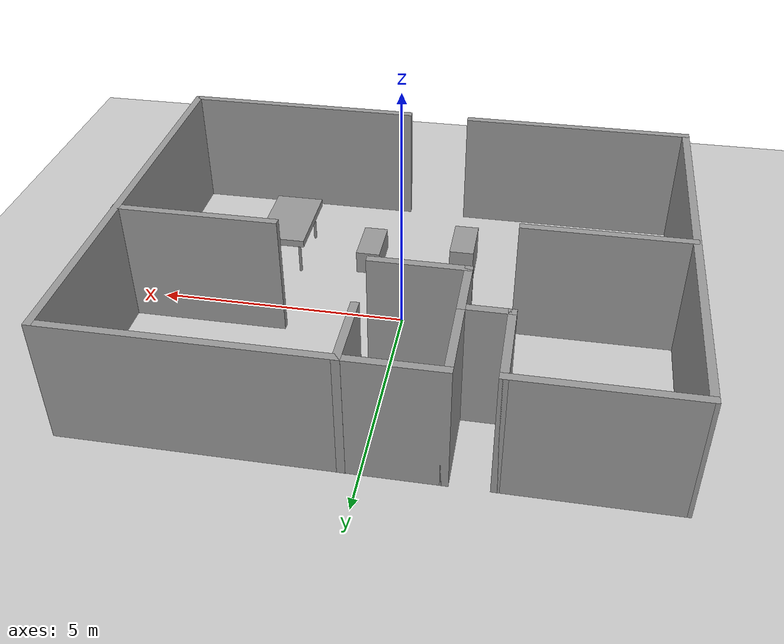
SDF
<sdf version="1.6">
 <world name="default">
  <light name="sun" type="directional">
   <pose>0 0 10 0 -0 0</pose>
   <diffuse>0.8 0.8 0.8 1</diffuse>
   <specular>0.2 0.2 0.2 1</specular>
   <attenuation>
    <range>1000</range>
    <constant>0.9</constant>
    <linear>0.01</linear>
    <quadratic>0.001</quadratic>
   </attenuation>
   <direction>-0.5 0.1 -0.9</direction>
  </light>
  <model name="ground_plane">
   <static>1</static>
   <link name="link">
    <collision name="collision">
     <geometry><plane><normal>0 0 1</normal><size>100 100</size></plane></geometry>
     <surface>
      <contact><collide_bitmask>65535</collide_bitmask></contact>
      <friction><ode><mu>100</mu><mu2>50</mu2></ode></friction>
     </surface>
    </collision>
    <visual name="visual">
     <cast_shadows>0</cast_shadows>
     <geometry><plane><normal>0 0 1</normal><size>100 100</size></plane></geometry>
     <material>
      <script><uri>file://media/materials/scripts/gazebo.material</uri><name>Gazebo/Grey</name></script>
     </material>
    </visual>
   </link>
  </model>
  <gravity>0 0 -9.8</gravity>
  <magnetic_field>6e-06 2.3e-05 -4.2e-05</magnetic_field>
  <atmosphere type="adiabatic"/>
  <physics name="default_physics" default="0" type="ode">
   <max_step_size>0.001</max_step_size>
   <real_time_factor>1</real_time_factor>
   <real_time_update_rate>1000</real_time_update_rate>
  </physics>
  <scene><ambient>0.4 0.4 0.4 1</ambient><background>0.7 0.7 0.7 1</background><shadows>1</shadows></scene>
  <spherical_coordinates>
   <surface_model>EARTH_WGS84</surface_model>
   <latitude_deg>0</latitude_deg>
   <longitude_deg>0</longitude_deg>
   <elevation>0</elevation>
   <heading_deg>0</heading_deg>
  </spherical_coordinates>
  <model name="living_lab">
   <link name="Wall_0">
    <collision name="Wall_0_Collision">
     <geometry><box><size>3.25 0.15 2.5</size></box></geometry>
     <pose>0 0 1.25 0 -0 0</pose>
    </collision>
    <visual name="Wall_0_Visual">
     <pose>0 0 1.25 0 -0 0</pose>
     <geometry><box><size>3.25 0.15 2.5</size></box></geometry>
     <material>
      <script><uri>file://media/materials/scripts/gazebo.material</uri><name>Gazebo/Grey</name></script>
      <ambient>1 1 1 1</ambient>
     </material>
     <meta><layer>0</layer></meta>
    </visual>
    <pose>-3.83237 4.17394 0 0 -0 0</pose>
   </link>
   <link name="Wall_1">
    <collision name="Wall_1_Collision">
     <geometry><box><size>1.75 0.15 2.5</size></box></geometry>
     <pose>0 0 1.25 0 -0 0</pose>
    </collision>
    <visual name="Wall_1_Visual">
     <pose>0 0 1.25 0 -0 0</pose>
     <geometry><box><size>1.75 0.15 2.5</size></box></geometry>
     <material>
      <script><uri>file://media/materials/scripts/gazebo.material</uri><name>Gazebo/Grey</name></script>
      <ambient>1 1 1 1</ambient>
     </material>
     <meta><layer>0</layer></meta>
    </visual>
    <pose>-2.28237 3.37394 0 0 -0 -1.5708</pose>
   </link>
   <link name="Wall_10">
    <collision name="Wall_10_Collision">
     <geometry><box><size>7 0.15 2.5</size></box></geometry>
     <pose>0 0 1.25 0 -0 0</pose>
    </collision>
    <visual name="Wall_10_Visual">
     <pose>0 0 1.25 0 -0 0</pose>
     <geometry><box><size>7 0.15 2.5</size></box></geometry>
     <material>
      <script><uri>file://media/materials/scripts/gazebo.material</uri><name>Gazebo/Grey</name></script>
      <ambient>1 1 1 1</ambient>
     </material>
     <meta><layer>0</layer></meta>
    </visual>
    <pose>1.99263 4.17394 0 0 -0 0</pose>
   </link>
   <link name="Wall_12">
    <collision name="Wall_12_Collision">
     <geometry><box><size>8.5 0.15 2.5</size></box></geometry>
     <pose>0 0 1.25 0 -0 0</pose>
    </collision>
    <visual name="Wall_12_Visual">
     <pose>0 0 1.25 0 -0 0</pose>
     <geometry><box><size>8.5 0.15 2.5</size></box></geometry>
     <material>
      <script><uri>file://media/materials/scripts/gazebo.material</uri><name>Gazebo/Grey</name></script>
      <ambient>1 1 1 1</ambient>
     </material>
     <meta><layer>0</layer></meta>
    </visual>
    <pose>5.41763 -0.001063 0 0 -0 -1.5708</pose>
   </link>
   <link name="Wall_13">
    <collision name="Wall_13_Collision">
     <geometry><box><size>5 0.15 2.5</size></box></geometry>
     <pose>0 0 1.25 0 -0 0</pose>
    </collision>
    <visual name="Wall_13_Visual">
     <pose>0 0 1.25 0 -0 0</pose>
     <geometry><box><size>5 0.15 2.5</size></box></geometry>
     <material>
      <script><uri>file://media/materials/scripts/gazebo.material</uri><name>Gazebo/Grey</name></script>
      <ambient>1 1 1 1</ambient>
     </material>
     <meta><layer>0</layer></meta>
    </visual>
    <pose>2.99263 -4.17606 0 0 -0 3.14159</pose>
   </link>
   <link name="Wall_15">
    <collision name="Wall_15_Collision">
     <geometry><box><size>4.75 0.15 2.5</size></box></geometry>
     <pose>0 0 1.25 0 -0 0</pose>
    </collision>
    <visual name="Wall_15_Visual">
     <pose>0 0 1.25 0 -0 0</pose>
     <geometry><box><size>4.75 0.15 2.5</size></box></geometry>
     <material>
      <script><uri>file://media/materials/scripts/gazebo.material</uri><name>Gazebo/Grey</name></script>
      <ambient>1 1 1 1</ambient>
     </material>
     <meta><layer>0</layer></meta>
    </visual>
    <pose>-3.12746 -4.16076 0 0 -0 3.14159</pose>
   </link>
   <link name="Wall_17">
    <collision name="Wall_17_Collision">
     <geometry><box><size>8.48482 0.15 2.5</size></box></geometry>
     <pose>0 0 1.25 0 -0 0</pose>
    </collision>
    <visual name="Wall_17_Visual">
     <pose>0 0 1.25 0 -0 0</pose>
     <geometry><box><size>8.48482 0.15 2.5</size></box></geometry>
     <material>
      <script><uri>file://media/materials/scripts/gazebo.material</uri><name>Gazebo/Grey</name></script>
      <ambient>1 1 1 1</ambient>
     </material>
     <meta><layer>0</layer></meta>
    </visual>
    <pose>-5.40491 0.006586 0 0 -0 1.56539</pose>
   </link>
   <link name="Wall_19">
    <collision name="Wall_19_Collision">
     <geometry><box><size>3.25 0.15 2.5</size></box></geometry>
     <pose>0 0 1.25 0 -0 0</pose>
    </collision>
    <visual name="Wall_19_Visual">
     <pose>0 0 1.25 0 -0 0</pose>
     <geometry><box><size>3.25 0.15 2.5</size></box></geometry>
     <material>
      <script><uri>file://media/materials/scripts/gazebo.material</uri><name>Gazebo/Grey</name></script>
      <ambient>1 1 1 1</ambient>
     </material>
     <meta><layer>0</layer></meta>
    </visual>
    <pose>-3.82313 -0.037483 0 0 -0 0</pose>
   </link>
   <link name="Wall_2">
    <collision name="Wall_2_Collision">
     <geometry><box><size>1 0.15 2.5</size></box></geometry>
     <pose>0 0 1.25 0 -0 0</pose>
    </collision>
    <visual name="Wall_2_Visual">
     <pose>0 0 1.25 0 -0 0</pose>
     <geometry><box><size>1 0.15 2.5</size></box></geometry>
     <material>
      <script><uri>file://media/materials/scripts/gazebo.material</uri><name>Gazebo/Grey</name></script>
      <ambient>1 1 1 1</ambient>
     </material>
     <meta><layer>0</layer></meta>
    </visual>
    <pose>-1.85737 2.57394 0 0 -0 0</pose>
   </link>
   <link name="Wall_21">
    <collision name="Wall_21_Collision">
     <geometry><box><size>3.25 0.15 2.5</size></box></geometry>
     <pose>0 0 1.25 0 -0 0</pose>
    </collision>
    <visual name="Wall_21_Visual">
     <pose>0 0 1.25 0 -0 0</pose>
     <geometry><box><size>3.25 0.15 2.5</size></box></geometry>
     <material>
      <script><uri>file://media/materials/scripts/gazebo.material</uri><name>Gazebo/Grey</name></script>
      <ambient>1 1 1 1</ambient>
     </material>
     <meta><layer>0</layer></meta>
    </visual>
    <pose>3.87786 0.586038 0 0 -0 3.14159</pose>
   </link>
   <link name="Wall_24">
    <collision name="Wall_24_Collision">
     <geometry><box><size>1.5 0.15 2.5</size></box></geometry>
     <pose>0 0 1.25 0 -0 0</pose>
    </collision>
    <visual name="Wall_24_Visual">
     <pose>0 0 1.25 0 -0 0</pose>
     <geometry><box><size>1.5 0.15 2.5</size></box></geometry>
     <material>
      <script><uri>file://media/materials/scripts/gazebo.material</uri><name>Gazebo/Grey</name></script>
      <ambient>1 1 1 1</ambient>
     </material>
     <meta><layer>0</layer></meta>
    </visual>
    <pose>0.319016 3.50106 0 0 -0 -1.5708</pose>
   </link>
   <link name="Wall_3">
    <collision name="Wall_3_Collision">
     <geometry><box><size>1.25 0.15 2.5</size></box></geometry>
     <pose>0 0 1.25 0 -0 0</pose>
    </collision>
    <visual name="Wall_3_Visual">
     <pose>0 0 1.25 0 -0 0</pose>
     <geometry><box><size>1.25 0.15 2.5</size></box></geometry>
     <material>
      <script><uri>file://media/materials/scripts/gazebo.material</uri><name>Gazebo/Grey</name></script>
      <ambient>1 1 1 1</ambient>
     </material>
     <meta><layer>0</layer></meta>
    </visual>
    <pose>-1.43237 2.02394 0 0 -0 -1.5708</pose>
   </link>
   <link name="Wall_4">
    <collision name="Wall_4_Collision">
     <geometry><box><size>1.89133 0.15 2.5</size></box></geometry>
     <pose>0 0 1.25 0 -0 0</pose>
    </collision>
    <visual name="Wall_4_Visual">
     <pose>0 0 1.25 0 -0 0</pose>
     <geometry><box><size>1.89133 0.15 2.5</size></box></geometry>
     <material>
      <script><uri>file://media/materials/scripts/gazebo.material</uri><name>Gazebo/Grey</name></script>
      <ambient>1 1 1 1</ambient>
     </material>
     <meta><layer>0</layer></meta>
    </visual>
    <pose>-0.561748 1.47291 0 0 -0 -0.001179</pose>
   </link>
   <link name="Wall_9">
    <collision name="Wall_9_Collision">
     <geometry><box><size>1.75 0.15 2.5</size></box></geometry>
     <pose>0 0 1.25 0 -0 0</pose>
    </collision>
    <visual name="Wall_9_Visual">
     <pose>0 0 1.25 0 -0 0</pose>
     <geometry><box><size>1.75 0.15 2.5</size></box></geometry>
     <material>
      <script><uri>file://media/materials/scripts/gazebo.material</uri><name>Gazebo/Grey</name></script>
      <ambient>1 1 1 1</ambient>
     </material>
     <meta><layer>0</layer></meta>
    </visual>
    <pose>-1.43237 3.37394 0 0 -0 1.5708</pose>
   </link>
   <static>1</static>
  </model>
  <model name="Living_lab_table">
   <link name="link_1">
    <pose>-0.35 0.65 -0.09 0 -0 0</pose>
    <inertial>
     <mass>1</mass>
     <inertia><ixx>0.145833</ixx><ixy>0</ixy><ixz>0</ixz><iyy>0.145833</iyy><iyz>0</iyz><izz>0.125</izz></inertia>
    </inertial>
    <visual name="visual">
     <geometry><cylinder><radius>0.03</radius><length>0.75</length></cylinder></geometry>
     <material>
      <lighting>1</lighting>
      <script><uri>file://media/materials/scripts/gazebo.material</uri><name>Gazebo/Grey</name></script>
      <ambient>0.3 0.3 0.3 1</ambient>
      <diffuse>0.7 0.7 0.7 1</diffuse>
      <specular>0.01 0.01 0.01 1</specular>
      <emissive>0 0 0 1</emissive>
      <shader type="vertex"><normal_map>__default__</normal_map></shader>
     </material>
    </visual>
    <collision name="collision">
     <geometry><cylinder><radius>0.03</radius><length>0.75</length></cylinder></geometry>
     <surface>
      <friction>
       <ode><mu>1</mu><mu2>1</mu2><fdir1>0 0 0</fdir1><slip1>0</slip1><slip2>0</slip2></ode>
       <torsional>
        <coefficient>1</coefficient>
        <patch_radius>0</patch_radius>
        <surface_radius>0</surface_radius>
        <use_patch_radius>1</use_patch_radius>
        <ode><slip>0</slip></ode>
       </torsional>
      </friction>
      <bounce><restitution_coefficient>0</restitution_coefficient><threshold>1e+06</threshold></bounce>
      <contact>
       <collide_without_contact>0</collide_without_contact>
       <collide_without_contact_bitmask>1</collide_without_contact_bitmask>
       <collide_bitmask>1</collide_bitmask>
       <ode>
        <soft_cfm>0</soft_cfm>
        <soft_erp>0.2</soft_erp>
        <kp>1e+13</kp>
        <kd>1</kd>
        <max_vel>0.01</max_vel>
        <min_depth>0</min_depth>
       </ode>
       <bullet>
        <split_impulse>1</split_impulse>
        <split_impulse_penetration_threshold>-0.01</split_impulse_penetration_threshold>
        <soft_cfm>0</soft_cfm>
        <soft_erp>0.2</soft_erp>
        <kp>1e+13</kp>
        <kd>1</kd>
       </bullet>
      </contact>
     </surface>
    </collision>
   </link>
   <link name="link_1_clone">
    <pose>0.35 0.65 -0.09 0 -0 0</pose>
    <inertial>
     <mass>1</mass>
     <inertia><ixx>0.145833</ixx><ixy>0</ixy><ixz>0</ixz><iyy>0.145833</iyy><iyz>0</iyz><izz>0.125</izz></inertia>
    </inertial>
    <visual name="visual">
     <geometry><cylinder><radius>0.03</radius><length>0.75</length></cylinder></geometry>
     <material>
      <lighting>1</lighting>
      <script><uri>file://media/materials/scripts/gazebo.material</uri><name>Gazebo/Grey</name></script>
      <ambient>0.3 0.3 0.3 1</ambient>
      <diffuse>0.7 0.7 0.7 1</diffuse>
      <specular>0.01 0.01 0.01 1</specular>
      <emissive>0 0 0 1</emissive>
      <shader type="vertex"><normal_map>__default__</normal_map></shader>
     </material>
    </visual>
    <collision name="collision">
     <geometry><cylinder><radius>0.03</radius><length>0.75</length></cylinder></geometry>
     <surface>
      <friction>
       <ode><mu>1</mu><mu2>1</mu2><fdir1>0 0 0</fdir1><slip1>0</slip1><slip2>0</slip2></ode>
       <torsional>
        <coefficient>1</coefficient>
        <patch_radius>0</patch_radius>
        <surface_radius>0</surface_radius>
        <use_patch_radius>1</use_patch_radius>
        <ode><slip>0</slip></ode>
       </torsional>
      </friction>
      <bounce><restitution_coefficient>0</restitution_coefficient><threshold>1e+06</threshold></bounce>
      <contact>
       <collide_without_contact>0</collide_without_contact>
       <collide_without_contact_bitmask>1</collide_without_contact_bitmask>
       <collide_bitmask>1</collide_bitmask>
       <ode>
        <soft_cfm>0</soft_cfm>
        <soft_erp>0.2</soft_erp>
        <kp>1e+13</kp>
        <kd>1</kd>
        <max_vel>0.01</max_vel>
        <min_depth>0</min_depth>
       </ode>
       <bullet>
        <split_impulse>1</split_impulse>
        <split_impulse_penetration_threshold>-0.01</split_impulse_penetration_threshold>
        <soft_cfm>0</soft_cfm>
        <soft_erp>0.2</soft_erp>
        <kp>1e+13</kp>
        <kd>1</kd>
       </bullet>
      </contact>
     </surface>
    </collision>
   </link>
   <link name="link_1_clone_0">
    <pose>0.35 -0.65 -0.09 0 -0 0</pose>
    <inertial>
     <mass>1</mass>
     <inertia><ixx>0.145833</ixx><ixy>0</ixy><ixz>0</ixz><iyy>0.145833</iyy><iyz>0</iyz><izz>0.125</izz></inertia>
    </inertial>
    <visual name="visual">
     <geometry><cylinder><radius>0.03</radius><length>0.75</length></cylinder></geometry>
     <material>
      <lighting>1</lighting>
      <script><uri>file://media/materials/scripts/gazebo.material</uri><name>Gazebo/Grey</name></script>
      <ambient>0.3 0.3 0.3 1</ambient>
      <diffuse>0.7 0.7 0.7 1</diffuse>
      <specular>0.01 0.01 0.01 1</specular>
      <emissive>0 0 0 1</emissive>
      <shader type="vertex"><normal_map>__default__</normal_map></shader>
     </material>
    </visual>
    <collision name="collision">
     <geometry><cylinder><radius>0.03</radius><length>0.75</length></cylinder></geometry>
     <surface>
      <friction>
       <ode><mu>1</mu><mu2>1</mu2><fdir1>0 0 0</fdir1><slip1>0</slip1><slip2>0</slip2></ode>
       <torsional>
        <coefficient>1</coefficient>
        <patch_radius>0</patch_radius>
        <surface_radius>0</surface_radius>
        <use_patch_radius>1</use_patch_radius>
        <ode><slip>0</slip></ode>
       </torsional>
      </friction>
      <bounce><restitution_coefficient>0</restitution_coefficient><threshold>1e+06</threshold></bounce>
      <contact>
       <collide_without_contact>0</collide_without_contact>
       <collide_without_contact_bitmask>1</collide_without_contact_bitmask>
       <collide_bitmask>1</collide_bitmask>
       <ode>
        <soft_cfm>0</soft_cfm>
        <soft_erp>0.2</soft_erp>
        <kp>1e+13</kp>
        <kd>1</kd>
        <max_vel>0.01</max_vel>
        <min_depth>0</min_depth>
       </ode>
       <bullet>
        <split_impulse>1</split_impulse>
        <split_impulse_penetration_threshold>-0.01</split_impulse_penetration_threshold>
        <soft_cfm>0</soft_cfm>
        <soft_erp>0.2</soft_erp>
        <kp>1e+13</kp>
        <kd>1</kd>
       </bullet>
      </contact>
     </surface>
    </collision>
   </link>
   <link name="link_1_clone_1">
    <pose>-0.35 -0.65 -0.09 0 -0 0</pose>
    <inertial>
     <mass>1</mass>
     <inertia><ixx>0.145833</ixx><ixy>0</ixy><ixz>0</ixz><iyy>0.145833</iyy><iyz>0</iyz><izz>0.125</izz></inertia>
    </inertial>
    <visual name="visual">
     <geometry><cylinder><radius>0.03</radius><length>0.75</length></cylinder></geometry>
     <material>
      <lighting>1</lighting>
      <script><uri>file://media/materials/scripts/gazebo.material</uri><name>Gazebo/Grey</name></script>
      <ambient>0.3 0.3 0.3 1</ambient>
      <diffuse>0.7 0.7 0.7 1</diffuse>
      <specular>0.01 0.01 0.01 1</specular>
      <emissive>0 0 0 1</emissive>
      <shader type="vertex"><normal_map>__default__</normal_map></shader>
     </material>
    </visual>
    <collision name="collision">
     <geometry><cylinder><radius>0.03</radius><length>0.75</length></cylinder></geometry>
     <surface>
      <friction>
       <ode><mu>1</mu><mu2>1</mu2><fdir1>0 0 0</fdir1><slip1>0</slip1><slip2>0</slip2></ode>
       <torsional>
        <coefficient>1</coefficient>
        <patch_radius>0</patch_radius>
        <surface_radius>0</surface_radius>
        <use_patch_radius>1</use_patch_radius>
        <ode><slip>0</slip></ode>
       </torsional>
      </friction>
      <bounce><restitution_coefficient>0</restitution_coefficient><threshold>1e+06</threshold></bounce>
      <contact>
       <collide_without_contact>0</collide_without_contact>
       <collide_without_contact_bitmask>1</collide_without_contact_bitmask>
       <collide_bitmask>1</collide_bitmask>
       <ode>
        <soft_cfm>0</soft_cfm>
        <soft_erp>0.2</soft_erp>
        <kp>1e+13</kp>
        <kd>1</kd>
        <max_vel>0.01</max_vel>
        <min_depth>0</min_depth>
       </ode>
       <bullet>
        <split_impulse>1</split_impulse>
        <split_impulse_penetration_threshold>-0.01</split_impulse_penetration_threshold>
        <soft_cfm>0</soft_cfm>
        <soft_erp>0.2</soft_erp>
        <kp>1e+13</kp>
        <kd>1</kd>
       </bullet>
      </contact>
     </surface>
    </collision>
   </link>
   <link name="Living_lab_table::link_2">
    <pose>-0 -0 0.36 0 -0 0</pose>
    <inertial>
     <mass>1</mass>
     <inertia>
      <ixx>0.166667</ixx>
      <ixy>0</ixy>
      <ixz>0</ixz>
      <iyy>0.166667</iyy>
      <iyz>0</iyz>
      <izz>0.166667</izz>
     </inertia>
    </inertial>
    <visual name="visual">
     <geometry><box><size>1 1.7 0.15</size></box></geometry>
     <material>
      <lighting>1</lighting>
      <script><uri>file://media/materials/scripts/gazebo.material</uri><name>Gazebo/Grey</name></script>
      <ambient>0.3 0.3 0.3 1</ambient>
      <diffuse>0.7 0.7 0.7 1</diffuse>
      <specular>0.01 0.01 0.01 1</specular>
      <emissive>0 0 0 1</emissive>
      <shader type="vertex"><normal_map>__default__</normal_map></shader>
     </material>
    </visual>
    <collision name="collision">
     <geometry><box><size>1 1.7 0.15</size></box></geometry>
     <surface>
      <friction>
       <ode><mu>1</mu><mu2>1</mu2><fdir1>0 0 0</fdir1><slip1>0</slip1><slip2>0</slip2></ode>
       <torsional>
        <coefficient>1</coefficient>
        <patch_radius>0</patch_radius>
        <surface_radius>0</surface_radius>
        <use_patch_radius>1</use_patch_radius>
        <ode><slip>0</slip></ode>
       </torsional>
      </friction>
      <bounce><restitution_coefficient>0</restitution_coefficient><threshold>1e+06</threshold></bounce>
      <contact>
       <collide_without_contact>0</collide_without_contact>
       <collide_without_contact_bitmask>1</collide_without_contact_bitmask>
       <collide_bitmask>1</collide_bitmask>
       <ode>
        <soft_cfm>0</soft_cfm>
        <soft_erp>0.2</soft_erp>
        <kp>1e+13</kp>
        <kd>1</kd>
        <max_vel>0.01</max_vel>
        <min_depth>0</min_depth>
       </ode>
       <bullet>
        <split_impulse>1</split_impulse>
        <split_impulse_penetration_threshold>-0.01</split_impulse_penetration_threshold>
        <soft_cfm>0</soft_cfm>
        <soft_erp>0.2</soft_erp>
        <kp>1e+13</kp>
        <kd>1</kd>
       </bullet>
      </contact>
     </surface>
    </collision>
   </link>
   <static>1</static>
   <pose>2.8 -2.02354 0.45 0 -0 0</pose>
  </model>
  <audio><device>default</device></audio>
  <model name="box">
   <link name="link_1">
    <inertial>
     <mass>1</mass>
     <inertia>
      <ixx>0.166667</ixx>
      <ixy>0</ixy>
      <ixz>0</ixz>
      <iyy>0.166667</iyy>
      <iyz>0</iyz>
      <izz>0.166667</izz>
     </inertia>
    </inertial>
    <visual name="visual">
     <pose>0 0 -0.25 0 -0 0</pose>
     <geometry><box><size>0.5 1 0.5</size></box></geometry>
     <material>
      <lighting>1</lighting>
      <script><uri>file://media/materials/scripts/gazebo.material</uri><name>Gazebo/Grey</name></script>
      <shader type="vertex"><normal_map>__default__</normal_map></shader>
      <ambient>0.3 0.3 0.3 1</ambient>
      <diffuse>0.7 0.7 0.7 1</diffuse>
      <specular>0.01 0.01 0.01 1</specular>
      <emissive>0 0 0 1</emissive>
     </material>
    </visual>
    <collision name="collision">
     <pose>0 0 -0.25 0 -0 0</pose>
     <geometry><box><size>0.5 1 0.5</size></box></geometry>
     <surface>
      <friction>
       <ode><mu>1</mu><mu2>1</mu2><fdir1>0 0 0</fdir1><slip1>0</slip1><slip2>0</slip2></ode>
       <torsional>
        <coefficient>1</coefficient>
        <patch_radius>0</patch_radius>
        <surface_radius>0</surface_radius>
        <use_patch_radius>1</use_patch_radius>
        <ode><slip>0</slip></ode>
       </torsional>
      </friction>
      <bounce><restitution_coefficient>0</restitution_coefficient><threshold>1e+06</threshold></bounce>
      <contact>
       <collide_without_contact>0</collide_without_contact>
       <collide_without_contact_bitmask>1</collide_without_contact_bitmask>
       <collide_bitmask>1</collide_bitmask>
       <ode>
        <soft_cfm>0</soft_cfm>
        <soft_erp>0.2</soft_erp>
        <kp>1e+13</kp>
        <kd>1</kd>
        <max_vel>0.01</max_vel>
        <min_depth>0</min_depth>
       </ode>
       <bullet>
        <split_impulse>1</split_impulse>
        <split_impulse_penetration_threshold>-0.01</split_impulse_penetration_threshold>
        <soft_cfm>0</soft_cfm>
        <soft_erp>0.2</soft_erp>
        <kp>1e+13</kp>
        <kd>1</kd>
       </bullet>
      </contact>
     </surface>
    </collision>
   </link>
   <static>1</static>
   <pose>1 -2 0.5 0 -0 0</pose>
  </model>
  <model name="box75">
   <link name="link_0">
    <inertial>
     <mass>1</mass>
     <inertia>
      <ixx>0.166667</ixx>
      <ixy>0</ixy>
      <ixz>0</ixz>
      <iyy>0.166667</iyy>
      <iyz>0</iyz>
      <izz>0.166667</izz>
     </inertia>
    </inertial>
    <visual name="visual">
     <geometry><box><size>0.5 1 0.75</size></box></geometry>
     <material>
      <lighting>1</lighting>
      <script><uri>file://media/materials/scripts/gazebo.material</uri><name>Gazebo/Grey</name></script>
      <shader type="vertex"><normal_map>__default__</normal_map></shader>
      <ambient>0.3 0.3 0.3 1</ambient>
      <diffuse>0.7 0.7 0.7 1</diffuse>
      <specular>0.01 0.01 0.01 1</specular>
      <emissive>0 0 0 1</emissive>
     </material>
    </visual>
    <collision name="collision">
     <geometry><box><size>0.5 1 0.75</size></box></geometry>
     <surface>
      <friction>
       <ode><mu>1</mu><mu2>1</mu2><fdir1>0 0 0</fdir1><slip1>0</slip1><slip2>0</slip2></ode>
       <torsional>
        <coefficient>1</coefficient>
        <patch_radius>0</patch_radius>
        <surface_radius>0</surface_radius>
        <use_patch_radius>1</use_patch_radius>
        <ode><slip>0</slip></ode>
       </torsional>
      </friction>
      <bounce><restitution_coefficient>0</restitution_coefficient><threshold>1e+06</threshold></bounce>
      <contact>
       <collide_without_contact>0</collide_without_contact>
       <collide_without_contact_bitmask>1</collide_without_contact_bitmask>
       <collide_bitmask>1</collide_bitmask>
       <ode>
        <soft_cfm>0</soft_cfm>
        <soft_erp>0.2</soft_erp>
        <kp>1e+13</kp>
        <kd>1</kd>
        <max_vel>0.01</max_vel>
        <min_depth>0</min_depth>
       </ode>
       <bullet>
        <split_impulse>1</split_impulse>
        <split_impulse_penetration_threshold>-0.01</split_impulse_penetration_threshold>
        <soft_cfm>0</soft_cfm>
        <soft_erp>0.2</soft_erp>
        <kp>1e+13</kp>
        <kd>1</kd>
       </bullet>
      </contact>
     </surface>
    </collision>
   </link>
   <static>1</static>
   <pose>-1 -2 0.385 0 -0 0</pose>
  </model>
 </world>
</sdf>
